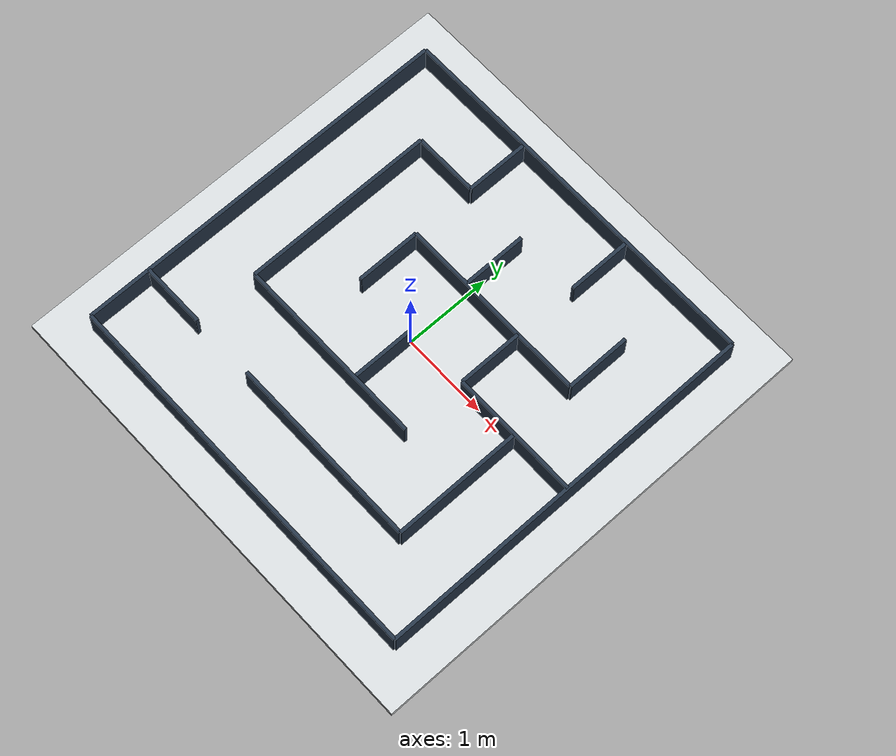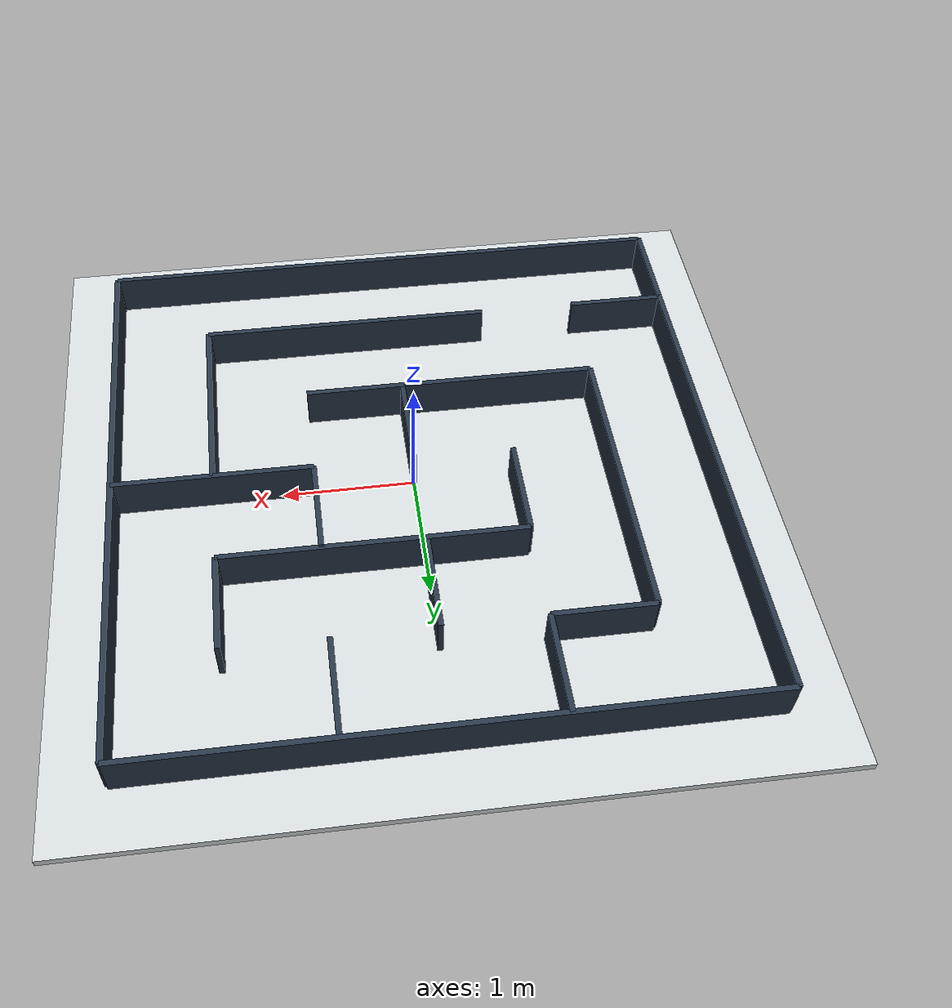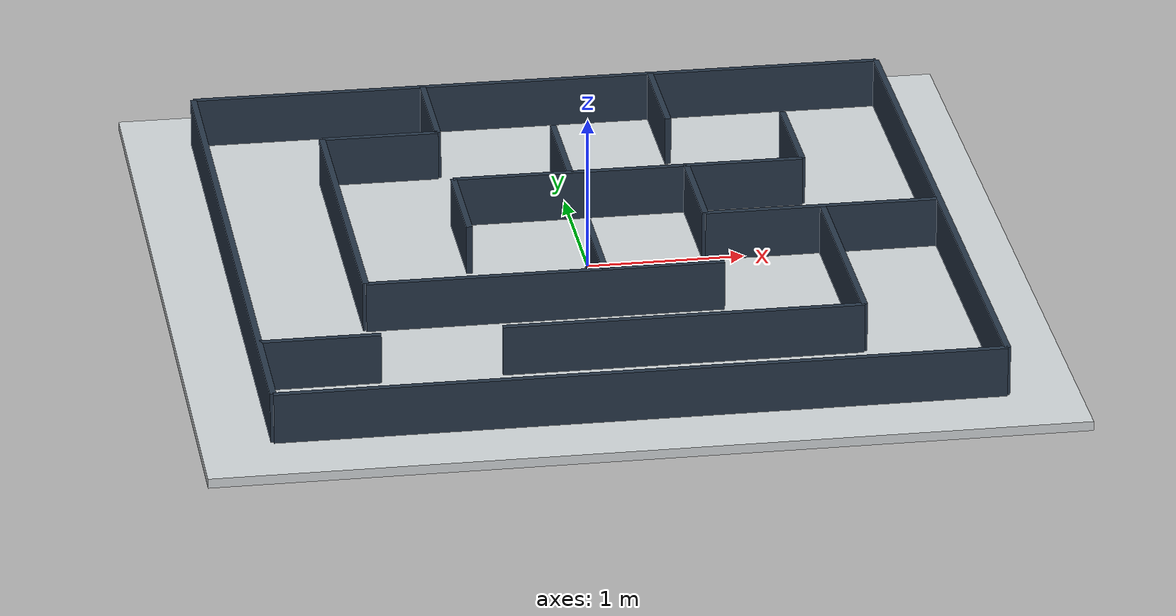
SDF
<?xml version='1.0' encoding='utf-8'?>
<sdf version="1.9">
  <world name="assignment_maze">
    <gravity>0 0 -9.8</gravity>
    <magnetic_field>6e-6 2.3e-5 -4.2e-5</magnetic_field>
    <plugin filename="gz-sim-physics-system" name="gz::sim::systems::Physics" />
    <plugin filename="gz-sim-user-commands-system" name="gz::sim::systems::UserCommands" />
    <plugin filename="gz-sim-scene-broadcaster-system" name="gz::sim::systems::SceneBroadcaster" />
    <plugin filename="gz-sim-sensors-system" name="gz::sim::systems::Sensors">
      <render_engine>ogre2</render_engine>
    </plugin>
    <plugin filename="gz-sim-imu-system" name="gz::sim::systems::Imu" />
    <light type="directional" name="sun">
      <cast_shadows>true</cast_shadows>
      <pose>0 0 10 0 0 0</pose>
      <diffuse>0.9 0.9 0.9 1</diffuse>
      <specular>0.2 0.2 0.2 1</specular>
      <direction>-0.4 0.4 -1.0</direction>
    </light>
    <scene>
      <ambient>0.7 0.7 0.7 1</ambient>
      <background>0.95 0.95 0.98 1</background>
    </scene>
    <model name="floor">
      <static>true</static>
      <pose>0.0000 0.0000 -0.0300 0.0000 0.0000 0.0000</pose>
      <link name="link">
        <collision name="collision">
          <geometry>
            <box>
              <size>5.4000 5.4000 0.0600</size>
            </box>
          </geometry>
        </collision>
        <visual name="visual">
          <geometry>
            <box>
              <size>5.4000 5.4000 0.0600</size>
            </box>
          </geometry>
          <material>
            <ambient>0.82 0.84 0.85 1</ambient>
            <diffuse>0.82 0.84 0.85 1</diffuse>
          </material>
        </visual>
      </link>
    </model>
    <model name="wall_h_00">
      <static>true</static>
      <pose>0.0000 2.2500 0.1600 0.0000 0.0000 0.0000</pose>
      <link name="link">
        <collision name="collision">
          <geometry>
            <box>
              <size>4.5000 0.0400 0.3200</size>
            </box>
          </geometry>
        </collision>
        <visual name="visual">
          <geometry>
            <box>
              <size>4.5000 0.0400 0.3200</size>
            </box>
          </geometry>
          <material>
            <ambient>0.15 0.21 0.28 1</ambient>
            <diffuse>0.15 0.21 0.28 1</diffuse>
          </material>
        </visual>
      </link>
    </model>
    <model name="wall_h_01">
      <static>true</static>
      <pose>0.0000 -2.2500 0.1600 0.0000 0.0000 0.0000</pose>
      <link name="link">
        <collision name="collision">
          <geometry>
            <box>
              <size>4.5000 0.0400 0.3200</size>
            </box>
          </geometry>
        </collision>
        <visual name="visual">
          <geometry>
            <box>
              <size>4.5000 0.0400 0.3200</size>
            </box>
          </geometry>
          <material>
            <ambient>0.15 0.21 0.28 1</ambient>
            <diffuse>0.15 0.21 0.28 1</diffuse>
          </material>
        </visual>
      </link>
    </model>
    <model name="wall_h_02">
      <static>true</static>
      <pose>-1.1250 1.5000 0.1600 0.0000 0.0000 0.0000</pose>
      <link name="link">
        <collision name="collision">
          <geometry>
            <box>
              <size>0.7500 0.0400 0.3200</size>
            </box>
          </geometry>
        </collision>
        <visual name="visual">
          <geometry>
            <box>
              <size>0.7500 0.0400 0.3200</size>
            </box>
          </geometry>
          <material>
            <ambient>0.15 0.21 0.28 1</ambient>
            <diffuse>0.15 0.21 0.28 1</diffuse>
          </material>
        </visual>
      </link>
    </model>
    <model name="wall_h_03">
      <static>true</static>
      <pose>0.3750 0.7500 0.1600 0.0000 0.0000 0.0000</pose>
      <link name="link">
        <collision name="collision">
          <geometry>
            <box>
              <size>2.2500 0.0400 0.3200</size>
            </box>
          </geometry>
        </collision>
        <visual name="visual">
          <geometry>
            <box>
              <size>2.2500 0.0400 0.3200</size>
            </box>
          </geometry>
          <material>
            <ambient>0.15 0.21 0.28 1</ambient>
            <diffuse>0.15 0.21 0.28 1</diffuse>
          </material>
        </visual>
      </link>
    </model>
    <model name="wall_h_04">
      <static>true</static>
      <pose>1.5000 0.0000 0.1600 0.0000 0.0000 0.0000</pose>
      <link name="link">
        <collision name="collision">
          <geometry>
            <box>
              <size>1.5000 0.0400 0.3200</size>
            </box>
          </geometry>
        </collision>
        <visual name="visual">
          <geometry>
            <box>
              <size>1.5000 0.0400 0.3200</size>
            </box>
          </geometry>
          <material>
            <ambient>0.15 0.21 0.28 1</ambient>
            <diffuse>0.15 0.21 0.28 1</diffuse>
          </material>
        </visual>
      </link>
    </model>
    <model name="wall_h_05">
      <static>true</static>
      <pose>-0.3750 -0.7500 0.1600 0.0000 0.0000 0.0000</pose>
      <link name="link">
        <collision name="collision">
          <geometry>
            <box>
              <size>2.2500 0.0400 0.3200</size>
            </box>
          </geometry>
        </collision>
        <visual name="visual">
          <geometry>
            <box>
              <size>2.2500 0.0400 0.3200</size>
            </box>
          </geometry>
          <material>
            <ambient>0.15 0.21 0.28 1</ambient>
            <diffuse>0.15 0.21 0.28 1</diffuse>
          </material>
        </visual>
      </link>
    </model>
    <model name="wall_h_06">
      <static>true</static>
      <pose>-1.8750 -1.5000 0.1600 0.0000 0.0000 0.0000</pose>
      <link name="link">
        <collision name="collision">
          <geometry>
            <box>
              <size>0.7500 0.0400 0.3200</size>
            </box>
          </geometry>
        </collision>
        <visual name="visual">
          <geometry>
            <box>
              <size>0.7500 0.0400 0.3200</size>
            </box>
          </geometry>
          <material>
            <ambient>0.15 0.21 0.28 1</ambient>
            <diffuse>0.15 0.21 0.28 1</diffuse>
          </material>
        </visual>
      </link>
    </model>
    <model name="wall_h_07">
      <static>true</static>
      <pose>0.3750 -1.5000 0.1600 0.0000 0.0000 0.0000</pose>
      <link name="link">
        <collision name="collision">
          <geometry>
            <box>
              <size>2.2500 0.0400 0.3200</size>
            </box>
          </geometry>
        </collision>
        <visual name="visual">
          <geometry>
            <box>
              <size>2.2500 0.0400 0.3200</size>
            </box>
          </geometry>
          <material>
            <ambient>0.15 0.21 0.28 1</ambient>
            <diffuse>0.15 0.21 0.28 1</diffuse>
          </material>
        </visual>
      </link>
    </model>
    <model name="wall_v_00">
      <static>true</static>
      <pose>-2.2500 0.0000 0.1600 0.0000 0.0000 0.0000</pose>
      <link name="link">
        <collision name="collision">
          <geometry>
            <box>
              <size>0.0400 4.5000 0.3200</size>
            </box>
          </geometry>
        </collision>
        <visual name="visual">
          <geometry>
            <box>
              <size>0.0400 4.5000 0.3200</size>
            </box>
          </geometry>
          <material>
            <ambient>0.15 0.21 0.28 1</ambient>
            <diffuse>0.15 0.21 0.28 1</diffuse>
          </material>
        </visual>
      </link>
    </model>
    <model name="wall_v_01">
      <static>true</static>
      <pose>2.2500 0.0000 0.1600 0.0000 0.0000 0.0000</pose>
      <link name="link">
        <collision name="collision">
          <geometry>
            <box>
              <size>0.0400 4.5000 0.3200</size>
            </box>
          </geometry>
        </collision>
        <visual name="visual">
          <geometry>
            <box>
              <size>0.0400 4.5000 0.3200</size>
            </box>
          </geometry>
          <material>
            <ambient>0.15 0.21 0.28 1</ambient>
            <diffuse>0.15 0.21 0.28 1</diffuse>
          </material>
        </visual>
      </link>
    </model>
    <model name="wall_v_02">
      <static>true</static>
      <pose>-1.5000 0.3750 0.1600 0.0000 0.0000 0.0000</pose>
      <link name="link">
        <collision name="collision">
          <geometry>
            <box>
              <size>0.0400 2.2500 0.3200</size>
            </box>
          </geometry>
        </collision>
        <visual name="visual">
          <geometry>
            <box>
              <size>0.0400 2.2500 0.3200</size>
            </box>
          </geometry>
          <material>
            <ambient>0.15 0.21 0.28 1</ambient>
            <diffuse>0.15 0.21 0.28 1</diffuse>
          </material>
        </visual>
      </link>
    </model>
    <model name="wall_v_03">
      <static>true</static>
      <pose>-0.7500 1.8750 0.1600 0.0000 0.0000 0.0000</pose>
      <link name="link">
        <collision name="collision">
          <geometry>
            <box>
              <size>0.0400 0.7500 0.3200</size>
            </box>
          </geometry>
        </collision>
        <visual name="visual">
          <geometry>
            <box>
              <size>0.0400 0.7500 0.3200</size>
            </box>
          </geometry>
          <material>
            <ambient>0.15 0.21 0.28 1</ambient>
            <diffuse>0.15 0.21 0.28 1</diffuse>
          </material>
        </visual>
      </link>
    </model>
    <model name="wall_v_04">
      <static>true</static>
      <pose>-0.7500 0.3750 0.1600 0.0000 0.0000 0.0000</pose>
      <link name="link">
        <collision name="collision">
          <geometry>
            <box>
              <size>0.0400 0.7500 0.3200</size>
            </box>
          </geometry>
        </collision>
        <visual name="visual">
          <geometry>
            <box>
              <size>0.0400 0.7500 0.3200</size>
            </box>
          </geometry>
          <material>
            <ambient>0.15 0.21 0.28 1</ambient>
            <diffuse>0.15 0.21 0.28 1</diffuse>
          </material>
        </visual>
      </link>
    </model>
    <model name="wall_v_05">
      <static>true</static>
      <pose>0.0000 1.1250 0.1600 0.0000 0.0000 0.0000</pose>
      <link name="link">
        <collision name="collision">
          <geometry>
            <box>
              <size>0.0400 0.7500 0.3200</size>
            </box>
          </geometry>
        </collision>
        <visual name="visual">
          <geometry>
            <box>
              <size>0.0400 0.7500 0.3200</size>
            </box>
          </geometry>
          <material>
            <ambient>0.15 0.21 0.28 1</ambient>
            <diffuse>0.15 0.21 0.28 1</diffuse>
          </material>
        </visual>
      </link>
    </model>
    <model name="wall_v_06">
      <static>true</static>
      <pose>0.0000 -0.3750 0.1600 0.0000 0.0000 0.0000</pose>
      <link name="link">
        <collision name="collision">
          <geometry>
            <box>
              <size>0.0400 0.7500 0.3200</size>
            </box>
          </geometry>
        </collision>
        <visual name="visual">
          <geometry>
            <box>
              <size>0.0400 0.7500 0.3200</size>
            </box>
          </geometry>
          <material>
            <ambient>0.15 0.21 0.28 1</ambient>
            <diffuse>0.15 0.21 0.28 1</diffuse>
          </material>
        </visual>
      </link>
    </model>
    <model name="wall_v_07">
      <static>true</static>
      <pose>0.7500 1.8750 0.1600 0.0000 0.0000 0.0000</pose>
      <link name="link">
        <collision name="collision">
          <geometry>
            <box>
              <size>0.0400 0.7500 0.3200</size>
            </box>
          </geometry>
        </collision>
        <visual name="visual">
          <geometry>
            <box>
              <size>0.0400 0.7500 0.3200</size>
            </box>
          </geometry>
          <material>
            <ambient>0.15 0.21 0.28 1</ambient>
            <diffuse>0.15 0.21 0.28 1</diffuse>
          </material>
        </visual>
      </link>
    </model>
    <model name="wall_v_08">
      <static>true</static>
      <pose>0.7500 0.3750 0.1600 0.0000 0.0000 0.0000</pose>
      <link name="link">
        <collision name="collision">
          <geometry>
            <box>
              <size>0.0400 0.7500 0.3200</size>
            </box>
          </geometry>
        </collision>
        <visual name="visual">
          <geometry>
            <box>
              <size>0.0400 0.7500 0.3200</size>
            </box>
          </geometry>
          <material>
            <ambient>0.15 0.21 0.28 1</ambient>
            <diffuse>0.15 0.21 0.28 1</diffuse>
          </material>
        </visual>
      </link>
    </model>
    <model name="wall_v_09">
      <static>true</static>
      <pose>1.5000 1.1250 0.1600 0.0000 0.0000 0.0000</pose>
      <link name="link">
        <collision name="collision">
          <geometry>
            <box>
              <size>0.0400 0.7500 0.3200</size>
            </box>
          </geometry>
        </collision>
        <visual name="visual">
          <geometry>
            <box>
              <size>0.0400 0.7500 0.3200</size>
            </box>
          </geometry>
          <material>
            <ambient>0.15 0.21 0.28 1</ambient>
            <diffuse>0.15 0.21 0.28 1</diffuse>
          </material>
        </visual>
      </link>
    </model>
    <model name="wall_v_10">
      <static>true</static>
      <pose>1.5000 -0.7500 0.1600 0.0000 0.0000 0.0000</pose>
      <link name="link">
        <collision name="collision">
          <geometry>
            <box>
              <size>0.0400 1.5000 0.3200</size>
            </box>
          </geometry>
        </collision>
        <visual name="visual">
          <geometry>
            <box>
              <size>0.0400 1.5000 0.3200</size>
            </box>
          </geometry>
          <material>
            <ambient>0.15 0.21 0.28 1</ambient>
            <diffuse>0.15 0.21 0.28 1</diffuse>
          </material>
        </visual>
      </link>
    </model>
  </world>
</sdf>
